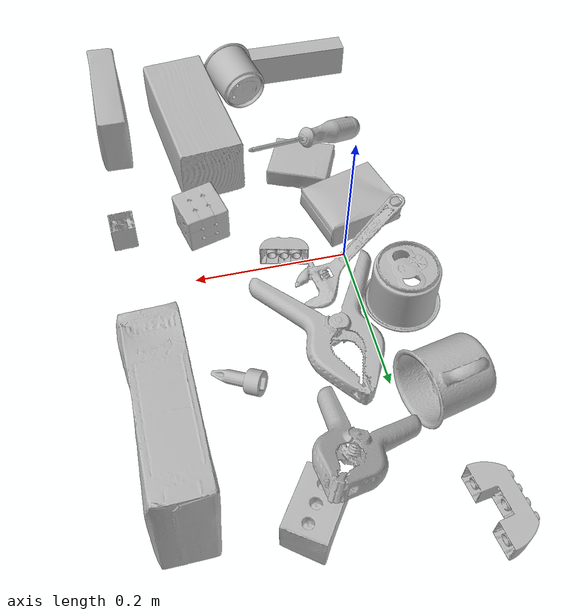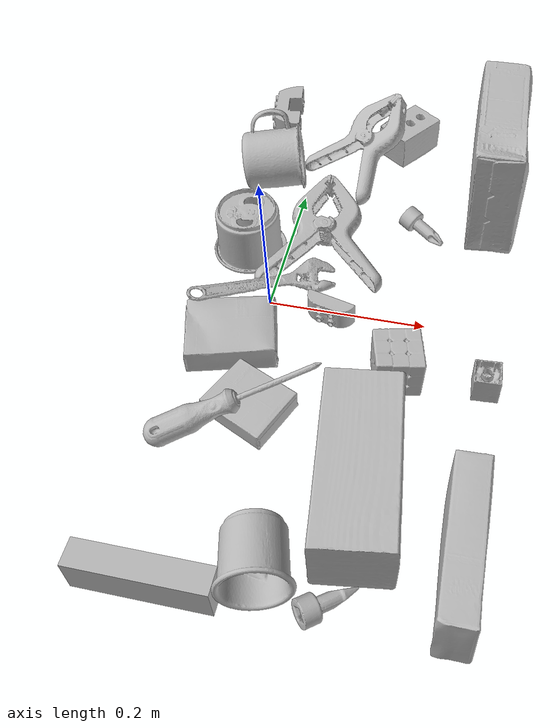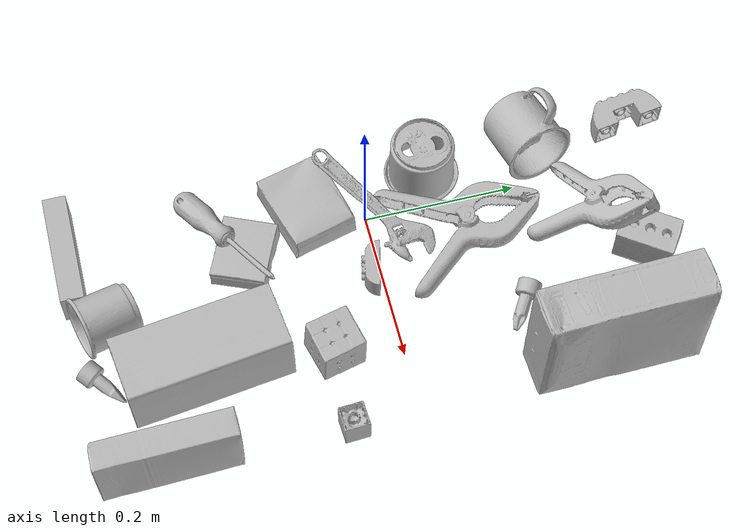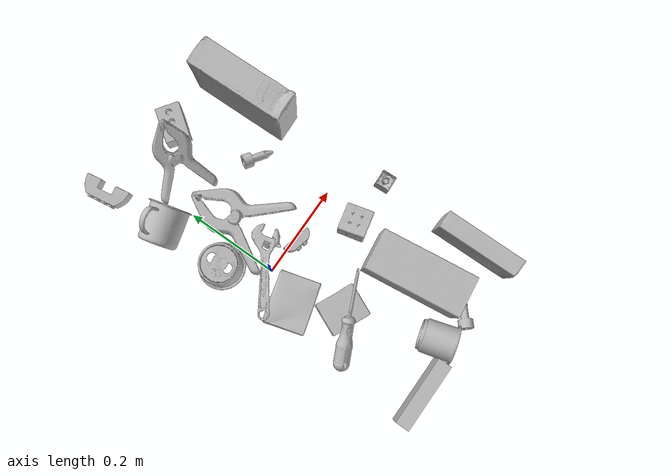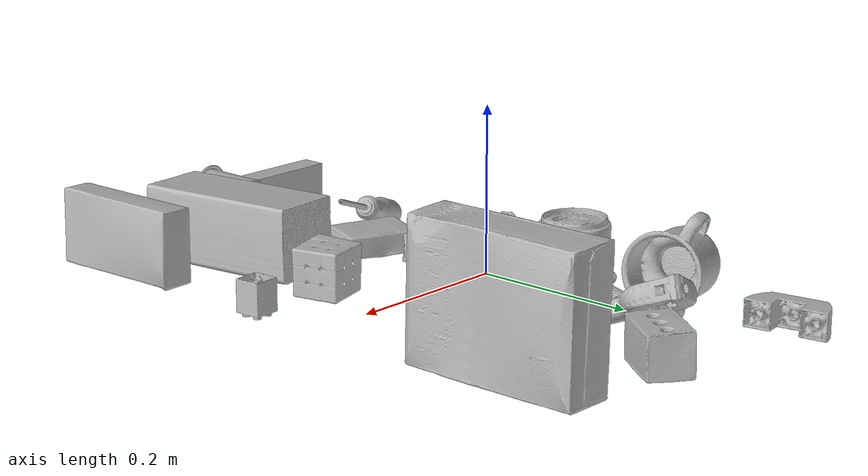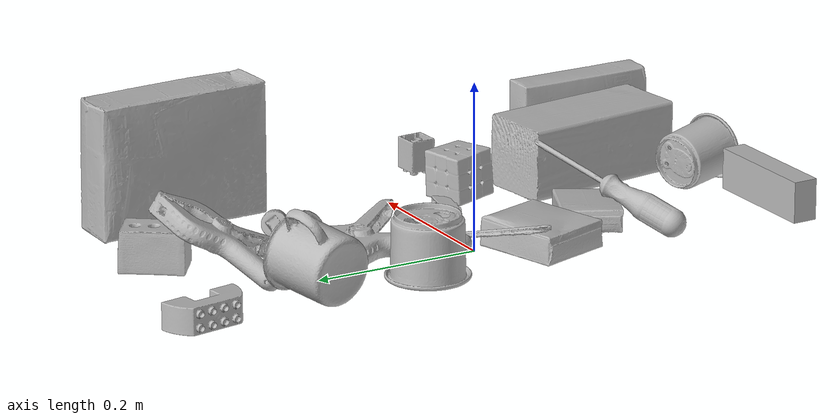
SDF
<sdf version="1.4">
  <world name="default">
    <light name="light1" type="point">
      <pose>0 0 1 0 0 0</pose>
      <diffuse>3 3 3 1</diffuse>
      <specular>3 3 3 1</specular>
    </light>
    <light name="light2" type="point">
      <pose>0 0.5 2 0 0 0</pose>
      <diffuse>1 1 1 1</diffuse>
      <specular>1 1 1 1</specular>
    </light>
    <light name="light3" type="point">
      <pose>0 0.5 2 0 0 0</pose>
      <diffuse>3 3 3 1</diffuse>
      <specular>3 3 3 1</specular>
    </light>
    <scene>
      <ambient>0.7 0.7 0.7</ambient>
    </scene>
    <model name="box21">
      <link name="link_box21">
        <collision name="default">
          <geometry>
            <mesh>
              <uri>model://cracker_box/collision_meshes/collision.obj</uri>
              <scale>1.0 1.0 1.0</scale>
            </mesh>
          </geometry>
          <surface>
            <friction>
              <ode>
                <mu>0.5</mu>
                <mu2>0.5</mu2>
              </ode>
            </friction>
          <contact>
        <ode>
            <max_vel>0</max_vel>
            <min_depth>0.0001</min_depth>
            <kp>1e8</kp>
        </ode>
    </contact></surface>
        </collision>
        <visual name="default">
          <geometry>
            <mesh>
              <uri>model://cracker_box/visual_meshes/visual.dae</uri>
              <scale>1.0 1.0 1.0</scale>
            </mesh>
          </geometry>
        </visual>
        <inertial>
          <mass>1.391977071762085</mass>
          <pose>0.0009464159375056624 0.0002543424488976598 -0.0017029533628374338 -0.000316207597302205 -0.011106489600460226 0.002546794768991959</pose>
          <inertia>
            <ixx>0.0035405685</ixx>
            <iyy>0.0058461735</iyy>
            <izz>0.008343027</izz>
            <ixy>0</ixy>
            <ixz>0</ixz>
            <iyz>0</iyz>
          </inertia>
        </inertial>
      </link>
      <pose>0.2625134289264679 0.24963924288749695 0.08175770193338394 1.5452331840466054 0.009040510322828741 1.6061777075696226</pose>
    </model>
    <model name="box22">
      <link name="link_box22">
        <collision name="default">
          <geometry>
            <mesh>
              <uri>model://pudding_box/collision_meshes/collision.obj</uri>
              <scale>1.0 1.0 1.0</scale>
            </mesh>
          </geometry>
          <surface>
            <friction>
              <ode>
                <mu>0.5</mu>
                <mu2>0.5</mu2>
              </ode>
            </friction>
          <contact>
        <ode>
            <max_vel>0</max_vel>
            <min_depth>0.0001</min_depth>
            <kp>1e8</kp>
        </ode>
    </contact></surface>
        </collision>
        <visual name="default">
          <geometry>
            <mesh>
              <uri>model://pudding_box/visual_meshes/visual.dae</uri>
              <scale>1.0 1.0 1.0</scale>
            </mesh>
          </geometry>
        </visual>
        <inertial>
          <mass>0.30066633224487305</mass>
          <pose>0.0004894821904599667 0.0008067885646596551 -0.0005188827635720372 0.005213102250656644 -0.006603798267444238 0.020079828885202117</pose>
          <inertia>
            <ixx>0.0003398878</ixx>
            <iyy>0.00022867892</iyy>
            <izz>0.00050193316</izz>
            <ixy>0</ixy>
            <ixz>0</ixz>
            <iyz>0</iyz>
          </inertia>
        </inertial>
      </link>
      <pose>-0.0290075670927763 -0.07154219597578049 0.01868600957095623 3.141592597540141 6.07398794957827e-08 1.8429289816535532</pose>
    </model>
    <model name="box23">
      <link name="link_box23">
        <collision name="default">
          <geometry>
            <mesh>
              <uri>model://rubiks_cube/collision_meshes/collision.obj</uri>
              <scale>1.0 1.0 1.0</scale>
            </mesh>
          </geometry>
          <surface>
            <friction>
              <ode>
                <mu>0.5</mu>
                <mu2>0.5</mu2>
              </ode>
            </friction>
          <contact>
        <ode>
            <max_vel>0</max_vel>
            <min_depth>0.0001</min_depth>
            <kp>1e8</kp>
        </ode>
    </contact></surface>
        </collision>
        <visual name="default">
          <geometry>
            <mesh>
              <uri>model://rubiks_cube/visual_meshes/visual.dae</uri>
              <scale>1.0 1.0 1.0</scale>
            </mesh>
          </geometry>
        </visual>
        <inertial>
          <mass>0.26383036375045776</mass>
          <pose>2.6721041649580002e-05 5.256966323941015e-05 -7.264316082000732e-06 -0.054671492146459166 -0.0981403456898064 -0.03445706250673431</pose>
          <inertia>
            <ixx>0.000145784</ixx>
            <iyy>0.00014510413</iyy>
            <izz>0.00014699204</izz>
            <ixy>0</ixy>
            <ixz>0</ixz>
            <iyz>0</iyz>
          </inertia>
        </inertial>
      </link>
      <pose>0.1772741675376892 -0.08257973939180374 0.02970019355416298 -1.6127558544987908 -0.020651082203929843 -1.3264274411810497</pose>
    </model>
    <model name="cup1">
      <link name="link_cup1">
        <collision name="default">
          <geometry>
            <mesh>
              <uri>model://i_cups/collision_meshes/collision.obj</uri>
              <scale>1.0 1.0 1.0</scale>
            </mesh>
          </geometry>
          <surface>
            <friction>
              <ode>
                <mu>0.5</mu>
                <mu2>0.5</mu2>
              </ode>
            </friction>
          <contact>
        <ode>
            <max_vel>0</max_vel>
            <min_depth>0.0001</min_depth>
            <kp>1e8</kp>
        </ode>
    </contact></surface>
        </collision>
        <visual name="default">
          <geometry>
            <mesh>
              <uri>model://i_cups/visual_meshes/visual.dae</uri>
              <scale>1.0 1.0 1.0</scale>
            </mesh>
          </geometry>
        </visual>
        <inertial>
          <mass>0.07817669957876205</mass>
          <pose>0.00011240140884183347 0.00016797371790744364 -0.0008579030982218683 -0.02898336998566683 -0.039872909189422004 -0.34590568894983</pose>
          <inertia>
            <ixx>0.000108236774</ixx>
            <iyy>0.000109190434</iyy>
            <izz>0.00012097212</izz>
            <ixy>0</ixy>
            <ixz>0</ixz>
            <iyz>0</iyz>
          </inertia>
        </inertial>
      </link>
      <pose>-0.05045681446790695 0.08905955404043198 0.03793301433324814 3.141592568017867 -7.993596697395768e-09 1.9116371627880904</pose>
    </model>
    <model name="cup2">
      <link name="link_cup2">
        <collision name="default">
          <geometry>
            <mesh>
              <uri>model://f_cups/collision_meshes/collision.obj</uri>
              <scale>1.0 1.0 1.0</scale>
            </mesh>
          </geometry>
          <surface>
            <friction>
              <ode>
                <mu>0.5</mu>
                <mu2>0.5</mu2>
              </ode>
            </friction>
          <contact>
        <ode>
            <max_vel>0</max_vel>
            <min_depth>0.0001</min_depth>
            <kp>1e8</kp>
        </ode>
    </contact></surface>
        </collision>
        <visual name="default">
          <geometry>
            <mesh>
              <uri>model://f_cups/visual_meshes/visual.dae</uri>
              <scale>1.0 1.0 1.0</scale>
            </mesh>
          </geometry>
        </visual>
        <inertial>
          <mass>0.06179655343294144</mass>
          <pose>-0.003171469084918499 -0.0006240077782422304 -0.0036555363330990076 0.786228783809594 -0.26079147583364887 -0.18237327348602217</pose>
          <inertia>
            <ixx>5.8090412e-05</ixx>
            <iyy>6.0937502e-05</iyy>
            <izz>6.3437656e-05</izz>
            <ixy>0</ixy>
            <ixz>0</ixz>
            <iyz>0</iyz>
          </inertia>
        </inertial>
      </link>
      <pose>0.07824523001909256 -0.34885936975479126 0.037063177675008774 1.3260488342242445 -1.165695122761774 0.5028508198111681</pose>
    </model>
    <model name="box11">
      <link name="link_box11">
        <collision name="default">
          <geometry>
            <mesh>
              <uri>model://jenga/collision_meshes/collision.obj</uri>
              <scale>1.0 1.0 1.0</scale>
            </mesh>
          </geometry>
          <surface>
            <friction>
              <ode>
                <mu>0.5</mu>
                <mu2>0.5</mu2>
              </ode>
            </friction>
          <contact>
        <ode>
            <max_vel>0</max_vel>
            <min_depth>0.0001</min_depth>
            <kp>1e8</kp>
        </ode>
    </contact></surface>
        </collision>
        <visual name="default">
          <geometry>
            <mesh>
              <uri>model://jenga/visual_meshes/visual.dae</uri>
              <scale>1.0 1.0 1.0</scale>
            </mesh>
          </geometry>
        </visual>
        <inertial>
          <mass>0.2841220796108246</mass>
          <pose>-2.5028555228345795e-07 -0.00010250010382151231 -4.0923401684267446e-05 0.0 -7.34215461761844e-07 0.0</pose>
          <inertia>
            <ixx>7.8623474e-05</ixx>
            <iyy>0.00053275056</iyy>
            <izz>0.0005687565</izz>
            <ixy>0</ixy>
            <ixz>0</ixz>
            <iyz>0</iyz>
          </inertia>
        </inertial>
      </link>
      <pose>-0.02621389552950859 -0.3847113251686096 0.02470194548368454 1.5774982615332114 -2.9054873108254227e-07 3.141591436990459</pose>
    </model>
    <model name="box12">
      <link name="link_box12">
        <collision name="default">
          <geometry>
            <mesh>
              <uri>model://wood_block/collision_meshes/collision.obj</uri>
              <scale>1.0 1.0 1.0</scale>
            </mesh>
          </geometry>
          <surface>
            <friction>
              <ode>
                <mu>0.5</mu>
                <mu2>0.5</mu2>
              </ode>
            </friction>
          <contact>
        <ode>
            <max_vel>0</max_vel>
            <min_depth>0.0001</min_depth>
            <kp>1e8</kp>
        </ode>
    </contact></surface>
        </collision>
        <visual name="default">
          <geometry>
            <mesh>
              <uri>model://wood_block/visual_meshes/visual.dae</uri>
              <scale>1.0 1.0 1.0</scale>
            </mesh>
          </geometry>
        </visual>
        <inertial>
          <mass>1.792885661125183</mass>
          <pose>-5.813315510749817e-06 -0.0005708095268346369 0.0002640858292579651 -0.0522099864925601 -0.005192695938411627 -0.006861379223067069</pose>
          <inertia>
            <ixx>0.0023991528</ixx>
            <iyy>0.007578924</iyy>
            <izz>0.007550574</izz>
            <ixy>0</ixy>
            <ixz>0</ixz>
            <iyz>0</iyz>
          </inertia>
        </inertial>
      </link>
      <pose>0.1619805246591568 -0.2433089166879654 0.04570065811276436 1.5681301792078017 -0.006938789022844534 1.7034068170563845</pose>
    </model>
    <model name="box13">
      <link name="link_box13">
        <collision name="default">
          <geometry>
            <mesh>
              <uri>model://sugar_box/collision_meshes/collision.obj</uri>
              <scale>1.0 1.0 1.0</scale>
            </mesh>
          </geometry>
          <surface>
            <friction>
              <ode>
                <mu>0.5</mu>
                <mu2>0.5</mu2>
              </ode>
            </friction>
          <contact>
        <ode>
            <max_vel>0</max_vel>
            <min_depth>0.0001</min_depth>
            <kp>1e8</kp>
        </ode>
    </contact></surface>
        </collision>
        <visual name="default">
          <geometry>
            <mesh>
              <uri>model://sugar_box/visual_meshes/visual.dae</uri>
              <scale>1.0 1.0 1.0</scale>
            </mesh>
          </geometry>
        </visual>
        <inertial>
          <mass>0.8825364708900452</mass>
          <pose>0.0010343727190047503 3.8491099985549226e-05 -0.00036364805418998003 -0.0004046260965456432 0.0010506635219437153 0.002615379021860657</pose>
          <inertia>
            <ixx>0.0007353271</ixx>
            <iyy>0.0023767278</iyy>
            <izz>0.002845227</izz>
            <ixy>0</ixy>
            <ixz>0</ixz>
            <iyz>0</iyz>
          </inertia>
        </inertial>
      </link>
      <pose>0.2768148183822632 -0.30861911177635193 0.04635179787874222 -1.5917606061335263 -0.009311967403921543 1.5883294272838355</pose>
    </model>
    <model name="box14">
      <link name="link_box14">
        <collision name="default">
          <geometry>
            <mesh>
              <uri>model://gelatin_box/collision_meshes/collision.obj</uri>
              <scale>1.0 1.0 1.0</scale>
            </mesh>
          </geometry>
          <surface>
            <friction>
              <ode>
                <mu>0.5</mu>
                <mu2>0.5</mu2>
              </ode>
            </friction>
          <contact>
        <ode>
            <max_vel>0</max_vel>
            <min_depth>0.0001</min_depth>
            <kp>1e8</kp>
        </ode>
    </contact></surface>
        </collision>
        <visual name="default">
          <geometry>
            <mesh>
              <uri>model://gelatin_box/visual_meshes/visual.dae</uri>
              <scale>1.0 1.0 1.0</scale>
            </mesh>
          </geometry>
        </visual>
        <inertial>
          <mass>0.13771659135818481</mass>
          <pose>0.0004319618456065655 0.00011156871914863586 -0.0003640321083366871 -0.0010503722043797578 -0.004755819155943452 0.016440555746729004</pose>
          <inertia>
            <ixx>9.721668e-05</ixx>
            <iyy>6.944137e-05</iyy>
            <izz>0.00014798543</izz>
            <ixy>0</ixy>
            <ixz>0</ixz>
            <iyz>0</iyz>
          </inertia>
        </inertial>
      </link>
      <pose>0.0187546256929636 -0.1628877818584442 0.014580663293600082 -3.12586422300808 -0.02571945484511804 1.1562032489517893</pose>
    </model>
    <model name="cup15">
      <link name="link_cup15">
        <collision name="default">
          <geometry>
            <mesh>
              <uri>model://mug/collision_meshes/collision.obj</uri>
              <scale>1.0 1.0 1.0</scale>
            </mesh>
          </geometry>
          <surface>
            <friction>
              <ode>
                <mu>0.5</mu>
                <mu2>0.5</mu2>
              </ode>
            </friction>
          <contact>
        <ode>
            <max_vel>0</max_vel>
            <min_depth>0.0001</min_depth>
            <kp>1e8</kp>
        </ode>
    </contact></surface>
        </collision>
        <visual name="default">
          <geometry>
            <mesh>
              <uri>model://mug/visual_meshes/visual.dae</uri>
              <scale>1.0 1.0 1.0</scale>
            </mesh>
          </geometry>
        </visual>
        <inertial>
          <mass>0.09286905825138092</mass>
          <pose>0.009571668691933155 0.0008143252343870699 -0.010947328992187977 -0.12983168029791675 0.08737751579099198 0.05507277032354666</pose>
          <inertia>
            <ixx>9.2248694e-05</ixx>
            <iyy>0.00010303637</iyy>
            <izz>0.00011916295</izz>
            <ixy>0</ixy>
            <ixz>0</ixz>
            <iyz>0</iyz>
          </inertia>
        </inertial>
      </link>
      <pose>-0.05361253395676613 0.2321721464395523 0.054465748369693756 -1.3748339956895628 1.0995000336203498 -1.1469751804676733</pose>
    </model>
    <model name="toy1">
      <link name="link_toy1">
        <collision name="default">
          <geometry>
            <mesh>
              <uri>model://e_toy_airplane/collision_meshes/collision.obj</uri>
              <scale>1.0 1.0 1.0</scale>
            </mesh>
          </geometry>
          <surface>
            <friction>
              <ode>
                <mu>0.5</mu>
                <mu2>0.5</mu2>
              </ode>
            </friction>
          <contact>
        <ode>
            <max_vel>0</max_vel>
            <min_depth>0.0001</min_depth>
            <kp>1e8</kp>
        </ode>
    </contact></surface>
        </collision>
        <visual name="default">
          <geometry>
            <mesh>
              <uri>model://e_toy_airplane/visual_meshes/visual.dae</uri>
              <scale>1.0 1.0 1.0</scale>
            </mesh>
          </geometry>
        </visual>
        <inertial>
          <mass>0.023911256343126297</mass>
          <pose>0.00011740469199139625 -2.2482965505332686e-05 -0.011187205091118813 0.005518515901869279 0.009228280443904262 0.15041685177791278</pose>
          <inertia>
            <ixx>7.297989e-06</ixx>
            <iyy>7.223337e-06</iyy>
            <izz>2.1933329e-06</izz>
            <ixy>0</ixy>
            <ixz>0</ixz>
            <iyz>0</iyz>
          </inertia>
        </inertial>
      </link>
      <pose>0.15605002641677856 -0.36723825335502625 0.012304605916142464 -1.7500140495830083 0.26981031296157176 -0.9193625841799329</pose>
    </model>
    <model name="toy2">
      <link name="link_toy2">
        <collision name="default">
          <geometry>
            <mesh>
              <uri>model://e_lego_duplo/collision_meshes/collision.obj</uri>
              <scale>1.0 1.0 1.0</scale>
            </mesh>
          </geometry>
          <surface>
            <friction>
              <ode>
                <mu>0.5</mu>
                <mu2>0.5</mu2>
              </ode>
            </friction>
          <contact>
        <ode>
            <max_vel>0</max_vel>
            <min_depth>0.0001</min_depth>
            <kp>1e8</kp>
        </ode>
    </contact></surface>
        </collision>
        <visual name="default">
          <geometry>
            <mesh>
              <uri>model://e_lego_duplo/visual_meshes/visual.dae</uri>
              <scale>1.0 1.0 1.0</scale>
            </mesh>
          </geometry>
        </visual>
        <inertial>
          <mass>0.11075761169195175</mass>
          <pose>0.00032560486579313874 0.0002348541165702045 0.0019521445501595736 -0.02256776115193108 -6.825012723321977e-05 -0.007625153470106003</pose>
          <inertia>
            <ixx>2.3096625e-05</ixx>
            <iyy>9.479449e-05</iyy>
            <izz>9.231077e-05</izz>
            <ixy>0</ixy>
            <ixz>0</ixz>
            <iyz>0</iyz>
          </inertia>
        </inertial>
      </link>
      <pose>-0.06769080460071564 0.3709624111652374 0.016279416158795357 1.578639092392663 -0.004769033376856951 -1.4107687614718714</pose>
    </model>
    <model name="toy3">
      <link name="link_toy3">
        <collision name="default">
          <geometry>
            <mesh>
              <uri>model://foam_brick/collision_meshes/collision.obj</uri>
              <scale>1.0 1.0 1.0</scale>
            </mesh>
          </geometry>
          <surface>
            <friction>
              <ode>
                <mu>0.5</mu>
                <mu2>0.5</mu2>
              </ode>
            </friction>
          <contact>
        <ode>
            <max_vel>0</max_vel>
            <min_depth>0.0001</min_depth>
            <kp>1e8</kp>
        </ode>
    </contact></surface>
        </collision>
        <visual name="default">
          <geometry>
            <mesh>
              <uri>model://foam_brick/visual_meshes/visual.dae</uri>
              <scale>1.0 1.0 1.0</scale>
            </mesh>
          </geometry>
        </visual>
        <inertial>
          <mass>0.18736568093299866</mass>
          <pose>-0.0002522472059354186 0.0003458441933616996 -0.0002532101352699101 -0.2940186982087205 0.017274432871393446 -0.000744985669109422</pose>
          <inertia>
            <ixx>8.184482e-05</ixx>
            <iyy>0.00013066948</iyy>
            <izz>0.00013233014</izz>
            <ixy>0</ixy>
            <ixz>0</ixz>
            <iyz>0</iyz>
          </inertia>
        </inertial>
      </link>
      <pose>0.1285090148448944 0.3393329977989197 0.025922829285264015 0.013426538141177419 0.00415762576744711 0.9543416460715982</pose>
    </model>
    <model name="toy4">
      <link name="link_toy4">
        <collision name="default">
          <geometry>
            <mesh>
              <uri>model://b_lego_duplo/collision_meshes/collision.obj</uri>
              <scale>1.0 1.0 1.0</scale>
            </mesh>
          </geometry>
          <surface>
            <friction>
              <ode>
                <mu>0.5</mu>
                <mu2>0.5</mu2>
              </ode>
            </friction>
          <contact>
        <ode>
            <max_vel>0</max_vel>
            <min_depth>0.0001</min_depth>
            <kp>1e8</kp>
        </ode>
    </contact></surface>
        </collision>
        <visual name="default">
          <geometry>
            <mesh>
              <uri>model://b_lego_duplo/visual_meshes/visual.dae</uri>
              <scale>1.0 1.0 1.0</scale>
            </mesh>
          </geometry>
        </visual>
        <inertial>
          <mass>0.025353357195854187</mass>
          <pose>-0.00011053043272113428 -9.152237907983363e-06 0.001929429010488093 -0.03749469050897604 -0.02635423063131295 0.4518929125976256</pose>
          <inertia>
            <ixx>5.188755e-06</ixx>
            <iyy>5.223636e-06</iyy>
            <izz>4.623011e-06</izz>
            <ixy>0</ixy>
            <ixz>0</ixz>
            <iyz>0</iyz>
          </inertia>
        </inertial>
      </link>
      <pose>0.2825801372528076 -0.0847238078713417 0.021815069019794464 -3.1415129897254195 -8.712382434668102e-05 -3.0862492779062727</pose>
    </model>
    <model name="toy5">
      <link name="link_toy5">
        <collision name="default">
          <geometry>
            <mesh>
              <uri>model://d_toy_airplane/collision_meshes/collision.obj</uri>
              <scale>1.0 1.0 1.0</scale>
            </mesh>
          </geometry>
          <surface>
            <friction>
              <ode>
                <mu>0.5</mu>
                <mu2>0.5</mu2>
              </ode>
            </friction>
          <contact>
        <ode>
            <max_vel>0</max_vel>
            <min_depth>0.0001</min_depth>
            <kp>1e8</kp>
        </ode>
    </contact></surface>
        </collision>
        <visual name="default">
          <geometry>
            <mesh>
              <uri>model://d_toy_airplane/visual_meshes/visual.dae</uri>
              <scale>1.0 1.0 1.0</scale>
            </mesh>
          </geometry>
        </visual>
        <inertial>
          <mass>0.012228579260408878</mass>
          <pose>9.410289931111038e-05 -5.8093195548281074e-05 -0.011728097684681416 0.00026677116185868234 0.004678984415060646 0.5194210089241819</pose>
          <inertia>
            <ixx>3.6658907e-06</ixx>
            <iyy>3.6686554e-06</iyy>
            <izz>1.1067563e-06</izz>
            <ixy>0</ixy>
            <ixz>0</ixz>
            <iyz>0</iyz>
          </inertia>
        </inertial>
      </link>
      <pose>0.17623162269592285 0.16032418608665466 0.011753437109291553 1.7936028585154158 0.4923632396846026 1.1072800076024816</pose>
    </model>
    <model name="toy6">
      <link name="link_toy6">
        <collision name="default">
          <geometry>
            <mesh>
              <uri>model://a_lego_duplo/collision_meshes/collision.obj</uri>
              <scale>1.0 1.0 1.0</scale>
            </mesh>
          </geometry>
          <surface>
            <friction>
              <ode>
                <mu>0.5</mu>
                <mu2>0.5</mu2>
              </ode>
            </friction>
          <contact>
        <ode>
            <max_vel>0</max_vel>
            <min_depth>0.0001</min_depth>
            <kp>1e8</kp>
        </ode>
    </contact></surface>
        </collision>
        <visual name="default">
          <geometry>
            <mesh>
              <uri>model://a_lego_duplo/visual_meshes/visual.dae</uri>
              <scale>1.0 1.0 1.0</scale>
            </mesh>
          </geometry>
        </visual>
        <inertial>
          <mass>0.012199957855045795</mass>
          <pose>-0.00011337617615936324 0.00018517585704103112 0.0003692606114782393 -0.014116995063493705 -0.0001256559143483996 6.140869386576653e-05</pose>
          <inertia>
            <ixx>1.564132e-06</ixx>
            <iyy>3.5039989e-06</iyy>
            <izz>4.340482e-06</izz>
            <ixy>0</ixy>
            <ixz>0</ixz>
            <iyz>0</iyz>
          </inertia>
        </inertial>
      </link>
      <pose>0.07923335582017899 -0.012533898465335369 0.016247007995843887 -1.5707931441045673 2.8147219081586046e-06 2.90478949361242</pose>
    </model>
    <model name="hardware1">
      <link name="link_hardware1">
        <collision name="default">
          <geometry>
            <mesh>
              <uri>model://phillips_screwdriver/collision_meshes/collision.obj</uri>
              <scale>1.0 1.0 1.0</scale>
            </mesh>
          </geometry>
          <surface>
            <friction>
              <ode>
                <mu>0.5</mu>
                <mu2>0.5</mu2>
              </ode>
            </friction>
          <contact>
        <ode>
            <max_vel>0</max_vel>
            <min_depth>0.0001</min_depth>
            <kp>1e8</kp>
        </ode>
    </contact></surface>
        </collision>
        <visual name="default">
          <geometry>
            <mesh>
              <uri>model://phillips_screwdriver/visual_meshes/visual.dae</uri>
              <scale>1.0 1.0 1.0</scale>
            </mesh>
          </geometry>
        </visual>
        <inertial>
          <mass>0.06495495140552521</mass>
          <pose>-0.04777183011174202 0.0010362302418798208 -0.00045555501128546894 -0.1571888451297522 0.005850998841919991 -0.0021567342335393844</pose>
          <inertia>
            <ixx>7.63154e-06</ixx>
            <iyy>9.568614e-05</iyy>
            <izz>9.576745e-05</izz>
            <ixy>0</ixy>
            <ixz>0</ixz>
            <iyz>0</iyz>
          </inertia>
        </inertial>
      </link>
      <pose>0.00596185028553009 -0.18471425771713257 0.044869255274534225 1.902179519363338 -0.33407945350304 0.45014975065216883</pose>
    </model>
    <model name="hardware2">
      <link name="link_hardware2">
        <collision name="default">
          <geometry>
            <mesh>
              <uri>model://extra_large_clamp/collision_meshes/collision.obj</uri>
              <scale>1.0 1.0 1.0</scale>
            </mesh>
          </geometry>
          <surface>
            <friction>
              <ode>
                <mu>0.5</mu>
                <mu2>0.5</mu2>
              </ode>
            </friction>
          <contact>
        <ode>
            <max_vel>0</max_vel>
            <min_depth>0.0001</min_depth>
            <kp>1e8</kp>
        </ode>
    </contact></surface>
        </collision>
        <visual name="default">
          <geometry>
            <mesh>
              <uri>model://extra_large_clamp/visual_meshes/visual.dae</uri>
              <scale>1.0 1.0 1.0</scale>
            </mesh>
          </geometry>
        </visual>
        <inertial>
          <mass>0.19384004175662994</mass>
          <pose>0.003232018556445837 -7.61538467486389e-05 0.00031721554114483297 0.013786997874205318 -0.000506684650300538 -0.0008936209831217155</pose>
          <inertia>
            <ixx>0.00029460518</ixx>
            <iyy>0.00050721905</iyy>
            <izz>0.0007749263</izz>
            <ixy>0</ixy>
            <ixz>0</ixz>
            <iyz>0</iyz>
          </inertia>
        </inertial>
      </link>
      <pose>0.04462549835443497 0.12301957607269287 0.018067827448248863 -0.02437208269611818 8.470658842512018e-05 1.6790167011435564</pose>
    </model>
    <model name="hardware3">
      <link name="link_hardware3">
        <collision name="default">
          <geometry>
            <mesh>
              <uri>model://large_clamp/collision_meshes/collision.obj</uri>
              <scale>1.0 1.0 1.0</scale>
            </mesh>
          </geometry>
          <surface>
            <friction>
              <ode>
                <mu>0.5</mu>
                <mu2>0.5</mu2>
              </ode>
            </friction>
          <contact>
        <ode>
            <max_vel>0</max_vel>
            <min_depth>0.0001</min_depth>
            <kp>1e8</kp>
        </ode>
    </contact></surface>
        </collision>
        <visual name="default">
          <geometry>
            <mesh>
              <uri>model://large_clamp/visual_meshes/visual.dae</uri>
              <scale>1.0 1.0 1.0</scale>
            </mesh>
          </geometry>
        </visual>
        <inertial>
          <mass>0.09168914705514908</mass>
          <pose>0.006369357462972403 0.0003585686208680272 -0.0001839803735492751 -0.0021330784539622108 0.00967158945845961 0.026633182273159455</pose>
          <inertia>
            <ixx>8.0894904e-05</ixx>
            <iyy>0.00015362375</iyy>
            <izz>0.00022223631</izz>
            <ixy>0</ixy>
            <ixz>0</ixz>
            <iyz>0</iyz>
          </inertia>
        </inertial>
      </link>
      <pose>0.07288287580013275 0.28720390796661377 0.04653722792863846 3.1383077476313916 -0.48570230954561366 1.0067934338909663</pose>
    </model>
    <model name="hardware4">
      <link name="link_hardware4">
        <collision name="default">
          <geometry>
            <mesh>
              <uri>model://adjustable_wrench/collision_meshes/collision.obj</uri>
              <scale>1.0 1.0 1.0</scale>
            </mesh>
          </geometry>
          <surface>
            <friction>
              <ode>
                <mu>0.5</mu>
                <mu2>0.5</mu2>
              </ode>
            </friction>
          <contact>
        <ode>
            <max_vel>0</max_vel>
            <min_depth>0.0001</min_depth>
            <kp>1e8</kp>
        </ode>
    </contact></surface>
        </collision>
        <visual name="default">
          <geometry>
            <mesh>
              <uri>model://adjustable_wrench/visual_meshes/visual.dae</uri>
              <scale>1.0 1.0 1.0</scale>
            </mesh>
          </geometry>
        </visual>
        <inertial>
          <mass>0.03454793244600296</mass>
          <pose>0.03740980476140976 -0.0028968879487365484 -0.001114922808483243 -0.01447336202596381 0.006656025927011416 -0.010954184309206349</pose>
          <inertia>
            <ixx>7.0707333e-06</ixx>
            <iyy>8.275469e-05</iyy>
            <izz>8.944984e-05</izz>
            <ixy>0</ixy>
            <ixz>0</ixz>
            <iyz>0</iyz>
          </inertia>
        </inertial>
      </link>
      <pose>-0.004080608487129211 0.009965101256966591 0.022895408794283867 3.125699654389174 0.2228720026388446 0.6147904756595276</pose>
    </model>
  <physics type="ode">
      <max_contacts>50</max_contacts>
      <ode>
        <solver>
          <type>quick</type>
          <iters>75</iters>
        </solver>
        <constraints>
          <contact_max_correcting_vel>0</contact_max_correcting_vel>
          <contact_surface_layer>0</contact_surface_layer>
        </constraints>
      </ode>
    </physics></world>
</sdf>
